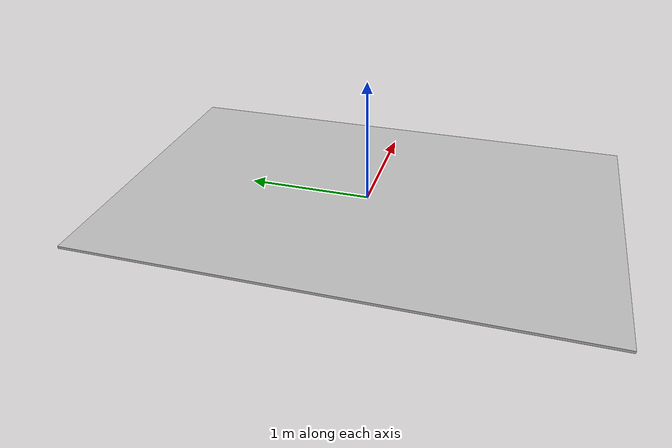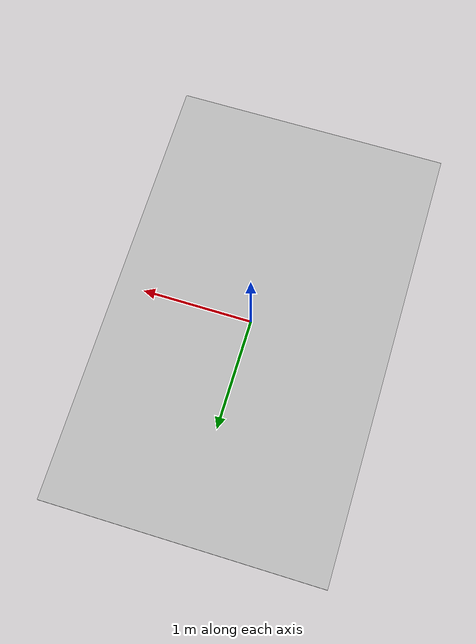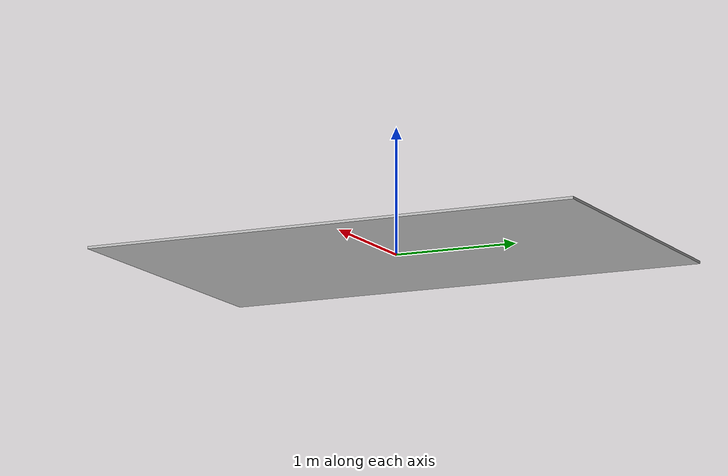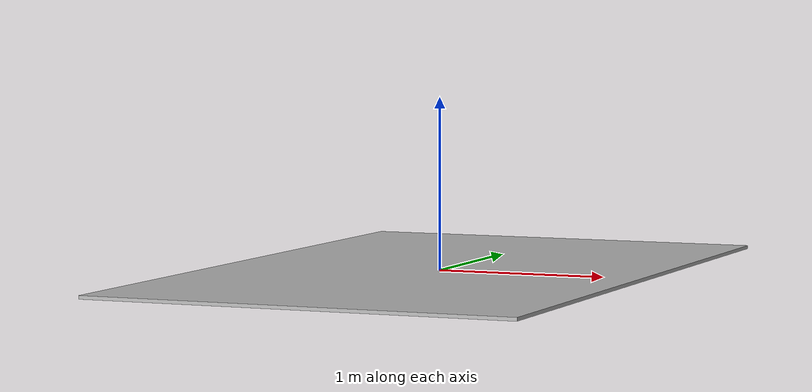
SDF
<?xml version="1.0" ?>
<sdf version="1.5">
  <model name="blue_tape_line">
    <static>true</static>
    <link name="link">
      <collision name="collision">
        <geometry>
          <box>
            <size>2.5 4 0.02</size>
          </box>
        </geometry>
      </collision>
      <visual name="visual">
        <cast_shadows>false</cast_shadows>
        <geometry>
          <box>
            <size>2.5 4 0.02</size>
          </box>
        </geometry>
        <material>
          <script>
            <uri>model://blue_tape_line/materials/scripts</uri>
            <uri>model://blue_tape_line/materials/textures</uri>
            <name>vrc/tape_line</name>
          </script>
        </material>
      </visual>
    </link>
  </model>
</sdf>
